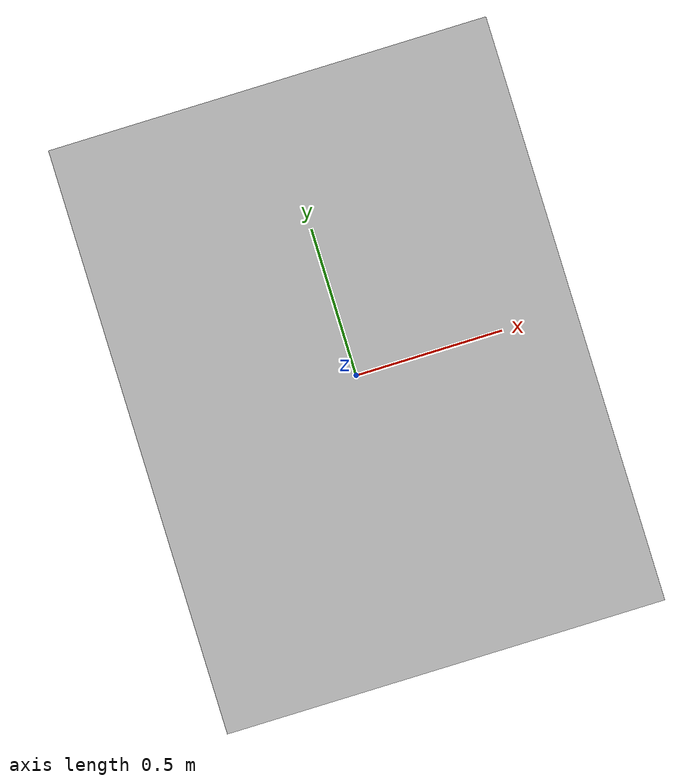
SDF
<?xml version="1.0" ?>
<sdf version="1.5">
  <model name="coastal_base">
    <static>true</static>
    <link name="link">
      <pose>0 0 0 0 0 0</pose>
      <collision name="collision">
        <geometry>
          <box>
            <size>1.5 2.0 0.01</size>
          </box>
        </geometry>
      </collision>
      <visual name="visual">
        <cast_shadows>false</cast_shadows>
        <geometry>
          <box>
            <size>1.5 2.0 0.01</size>
          </box>
        </geometry>
        <material>
          <script>
            <uri>model://coastal_base/materials/scripts</uri>
            <uri>model://coastal_base/materials/textures</uri>
            <name>vrc/coastal_base</name>
          </script>
        </material>
      </visual>
    </link>
  </model>
</sdf>
